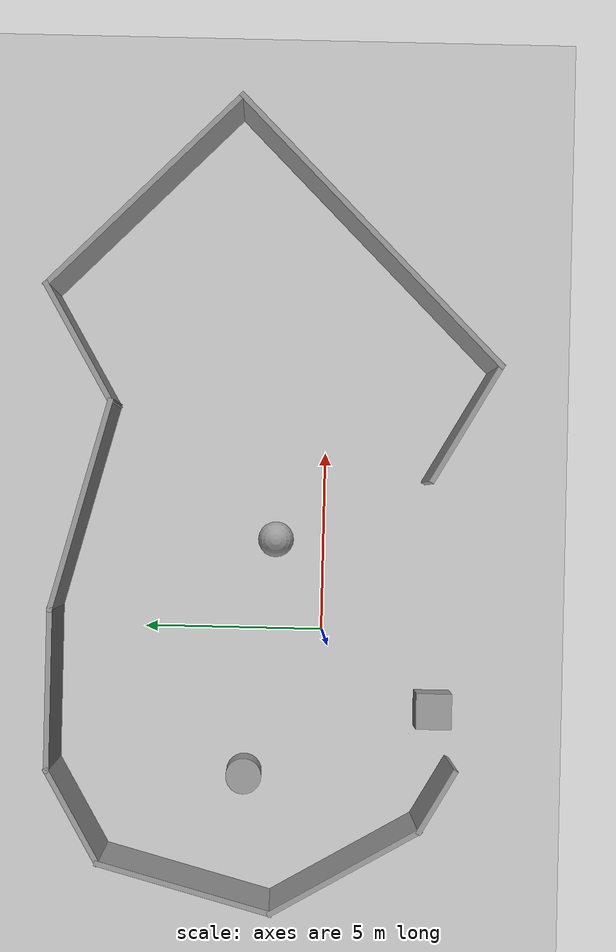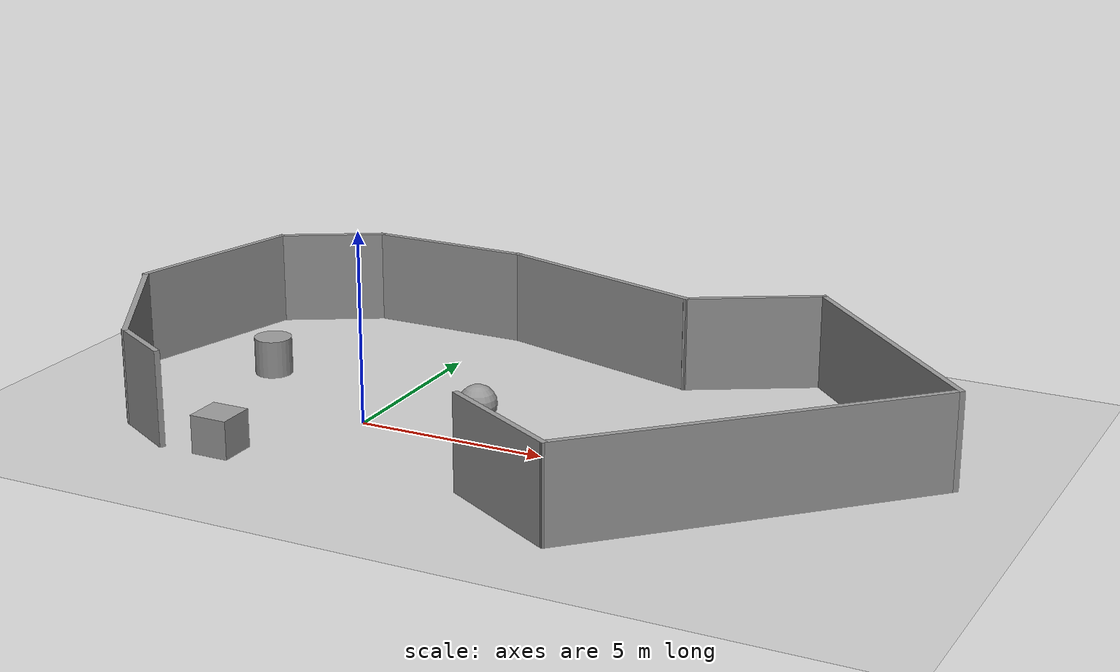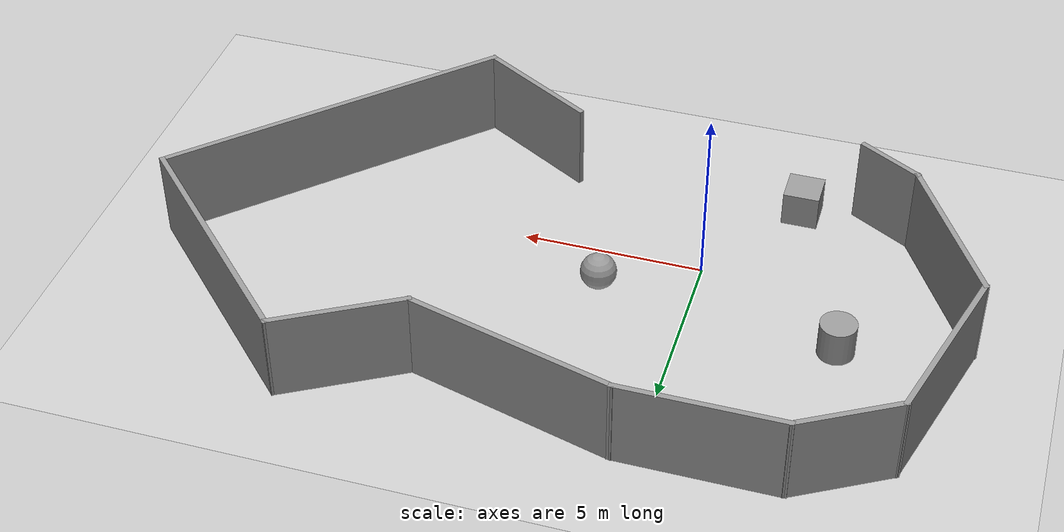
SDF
<sdf version="1.7">
 <world name="default">
  <light name="sun" type="directional">
   <pose>0 0 10 0 -0 0</pose>
   <diffuse>0.8 0.8 0.8 1</diffuse>
   <specular>0.2 0.2 0.2 1</specular>
   <attenuation>
    <range>1000</range>
    <constant>0.9</constant>
    <linear>0.01</linear>
    <quadratic>0.001</quadratic>
   </attenuation>
   <direction>-0.5 0.1 -0.9</direction>
   <spot><inner_angle>0</inner_angle><outer_angle>0</outer_angle><falloff>0</falloff></spot>
  </light>
  <model name="ground_plane">
   <static>1</static>
   <link name="link">
    <collision name="collision">
     <geometry><plane><normal>0 0 1</normal><size>100 100</size></plane></geometry>
     <surface>
      <contact><collide_bitmask>65535</collide_bitmask></contact>
      <friction><ode><mu>100</mu><mu2>50</mu2></ode></friction>
     </surface>
    </collision>
    <visual name="visual">
     <cast_shadows>0</cast_shadows>
     <geometry><plane><normal>0 0 1</normal><size>100 100</size></plane></geometry>
     <material>
      <script><uri>file://media/materials/scripts/gazebo.material</uri><name>Gazebo/Grey</name></script>
     </material>
    </visual>
   </link>
  </model>
  <gravity>0 0 -9.8</gravity>
  <magnetic_field>6e-06 2.3e-05 -4.2e-05</magnetic_field>
  <atmosphere type="adiabatic"/>
  <physics type="ode">
   <max_step_size>0.001</max_step_size>
   <real_time_factor>1</real_time_factor>
   <real_time_update_rate>1000</real_time_update_rate>
  </physics>
  <scene><ambient>0.4 0.4 0.4 1</ambient><background>0.7 0.7 0.7 1</background><shadows>1</shadows></scene>
  <spherical_coordinates>
   <surface_model>EARTH_WGS84</surface_model>
   <latitude_deg>0</latitude_deg>
   <longitude_deg>0</longitude_deg>
   <elevation>0</elevation>
   <heading_deg>0</heading_deg>
  </spherical_coordinates>
  <model name="unit_box">
   <pose>-2.15017 -3.1504 0.499995 -1e-05 -0 -0</pose>
   <link name="link">
    <inertial>
     <mass>1</mass>
     <inertia>
      <ixx>0.166667</ixx>
      <ixy>0</ixy>
      <ixz>0</ixz>
      <iyy>0.166667</iyy>
      <iyz>0</iyz>
      <izz>0.166667</izz>
     </inertia>
    </inertial>
    <collision name="collision"><geometry><box><size>1 1 1</size></box></geometry></collision>
    <visual name="visual">
     <geometry><box><size>1 1 1</size></box></geometry>
     <material>
      <script><name>Gazebo/Grey</name><uri>file://media/materials/scripts/gazebo.material</uri></script>
     </material>
    </visual>
   </link>
  </model>
  <model name="unit_cylinder">
   <pose>-4.06741 2.12119 0.499997 3e-06 4e-06 -0</pose>
   <link name="link">
    <inertial>
     <mass>1</mass>
     <inertia><ixx>0.145833</ixx><ixy>0</ixy><ixz>0</ixz><iyy>0.145833</iyy><iyz>0</iyz><izz>0.125</izz></inertia>
    </inertial>
    <collision name="collision">
     <geometry><cylinder><radius>0.5</radius><length>1</length></cylinder></geometry>
    </collision>
    <visual name="visual">
     <geometry><cylinder><radius>0.5</radius><length>1</length></cylinder></geometry>
     <material>
      <script><name>Gazebo/Grey</name><uri>file://media/materials/scripts/gazebo.material</uri></script>
     </material>
    </visual>
   </link>
  </model>
  <model name="unit_sphere">
   <pose>2.54874 1.35213 0.5 0 -0 0</pose>
   <link name="link">
    <inertial>
     <mass>1</mass>
     <inertia><ixx>0.1</ixx><ixy>0</ixy><ixz>0</ixz><iyy>0.1</iyy><iyz>0</iyz><izz>0.1</izz></inertia>
    </inertial>
    <collision name="collision"><geometry><sphere><radius>0.5</radius></sphere></geometry></collision>
    <visual name="visual">
     <geometry><sphere><radius>0.5</radius></sphere></geometry>
     <material>
      <script><name>Gazebo/Grey</name><uri>file://media/materials/scripts/gazebo.material</uri></script>
     </material>
    </visual>
   </link>
  </model>
  <model name="demo">
   <pose>3.51918 1.53486 0 0 -0 0</pose>
   <link name="Wall_10">
    <collision name="Wall_10_Collision">
     <geometry><box><size>10.25 0.15 2.5</size></box></geometry>
     <pose>0 0 1.25 0 -0 0</pose>
    </collision>
    <visual name="Wall_10_Visual">
     <pose>0 0 1.25 0 -0 0</pose>
     <geometry><box><size>10.25 0.15 2.5</size></box></geometry>
     <material>
      <script><uri>file://media/materials/scripts/gazebo.material</uri><name>Gazebo/Grey</name></script>
      <ambient>1 1 1 1</ambient>
     </material>
     <meta><layer>0</layer></meta>
    </visual>
    <pose>7.44682 -2.59862 0 0 -0 -2.35619</pose>
   </link>
   <link name="Wall_11">
    <collision name="Wall_11_Collision">
     <geometry><box><size>3.75 0.15 2.5</size></box></geometry>
     <pose>0 0 1.25 0 -0 0</pose>
    </collision>
    <visual name="Wall_11_Visual">
     <pose>0 0 1.25 0 -0 0</pose>
     <geometry><box><size>3.75 0.15 2.5</size></box></geometry>
     <material>
      <script><uri>file://media/materials/scripts/gazebo.material</uri><name>Gazebo/Grey</name></script>
      <ambient>1 1 1 1</ambient>
     </material>
     <meta><layer>0</layer></meta>
    </visual>
    <pose>2.31709 -5.26951 0 0 -0 2.61799</pose>
   </link>
   <link name="Wall_2">
    <collision name="Wall_2_Collision">
     <geometry><box><size>2 0.15 2.5</size></box></geometry>
     <pose>0 0 1.25 0 -0 0</pose>
    </collision>
    <visual name="Wall_2_Visual">
     <pose>0 0 1.25 0 -0 0</pose>
     <geometry><box><size>2 0.15 2.5</size></box></geometry>
     <material>
      <script><uri>file://media/materials/scripts/gazebo.material</uri><name>Gazebo/Grey</name></script>
      <ambient>1 1 1 1</ambient>
     </material>
     <meta><layer>0</layer></meta>
    </visual>
    <pose>-7.92025 -4.67236 0 0 -0 2.61799</pose>
   </link>
   <link name="Wall_3">
    <collision name="Wall_3_Collision">
     <geometry><box><size>4.75 0.15 2.5</size></box></geometry>
     <pose>0 0 1.25 0 -0 0</pose>
    </collision>
    <visual name="Wall_3_Visual">
     <pose>0 0 1.25 0 -0 0</pose>
     <geometry><box><size>4.75 0.15 2.5</size></box></geometry>
     <material>
      <script><uri>file://media/materials/scripts/gazebo.material</uri><name>Gazebo/Grey</name></script>
      <ambient>1 1 1 1</ambient>
     </material>
     <meta><layer>0</layer></meta>
    </visual>
    <pose>-9.87133 -2.218 0 0 -0 2.0944</pose>
   </link>
   <link name="Wall_4">
    <collision name="Wall_4_Collision">
     <geometry><box><size>5 0.15 2.5</size></box></geometry>
     <pose>0 0 1.25 0 -0 0</pose>
    </collision>
    <visual name="Wall_4_Visual">
     <pose>0 0 1.25 0 -0 0</pose>
     <geometry><box><size>5 0.15 2.5</size></box></geometry>
     <material>
      <script><uri>file://media/materials/scripts/gazebo.material</uri><name>Gazebo/Grey</name></script>
      <ambient>1 1 1 1</ambient>
     </material>
     <meta><layer>0</layer></meta>
    </visual>
    <pose>-10.3937 2.11623 0 0 -0 1.309</pose>
   </link>
   <link name="Wall_5">
    <collision name="Wall_5_Collision">
     <geometry><box><size>3 0.15 2.5</size></box></geometry>
     <pose>0 0 1.25 0 -0 0</pose>
    </collision>
    <visual name="Wall_5_Visual">
     <pose>0 0 1.25 0 -0 0</pose>
     <geometry><box><size>3 0.15 2.5</size></box></geometry>
     <material>
      <script><uri>file://media/materials/scripts/gazebo.material</uri><name>Gazebo/Grey</name></script>
      <ambient>1 1 1 1</ambient>
     </material>
     <meta><layer>0</layer></meta>
    </visual>
    <pose>-8.53197 5.1711 0 0 -0 0.523599</pose>
   </link>
   <link name="Wall_6">
    <collision name="Wall_6_Collision">
     <geometry><box><size>4.5 0.15 2.5</size></box></geometry>
     <pose>0 0 1.25 0 -0 0</pose>
    </collision>
    <visual name="Wall_6_Visual">
     <pose>0 0 1.25 0 -0 0</pose>
     <geometry><box><size>4.5 0.15 2.5</size></box></geometry>
     <material>
      <script><uri>file://media/materials/scripts/gazebo.material</uri><name>Gazebo/Grey</name></script>
      <ambient>1 1 1 1</ambient>
     </material>
     <meta><layer>0</layer></meta>
    </visual>
    <pose>-5.12288 5.8836 0 0 -0 0</pose>
   </link>
   <link name="Wall_7">
    <collision name="Wall_7_Collision">
     <geometry><box><size>6 0.15 2.5</size></box></geometry>
     <pose>0 0 1.25 0 -0 0</pose>
    </collision>
    <visual name="Wall_7_Visual">
     <pose>0 0 1.25 0 -0 0</pose>
     <geometry><box><size>6 0.15 2.5</size></box></geometry>
     <material>
      <script><uri>file://media/materials/scripts/gazebo.material</uri><name>Gazebo/Grey</name></script>
      <ambient>1 1 1 1</ambient>
     </material>
     <meta><layer>0</layer></meta>
    </visual>
    <pose>-0.122549 5.12655 0 0 -0 -0.261799</pose>
   </link>
   <link name="Wall_8">
    <collision name="Wall_8_Collision">
     <geometry><box><size>3.75 0.15 2.5</size></box></geometry>
     <pose>0 0 1.25 0 -0 0</pose>
    </collision>
    <visual name="Wall_8_Visual">
     <pose>0 0 1.25 0 -0 0</pose>
     <geometry><box><size>3.75 0.15 2.5</size></box></geometry>
     <material>
      <script><uri>file://media/materials/scripts/gazebo.material</uri><name>Gazebo/Grey</name></script>
      <ambient>1 1 1 1</ambient>
     </material>
     <meta><layer>0</layer></meta>
    </visual>
    <pose>4.26163 5.26951 0 0 -0 0.523599</pose>
   </link>
   <link name="Wall_9">
    <collision name="Wall_9_Collision">
     <geometry><box><size>7.5 0.15 2.5</size></box></geometry>
     <pose>0 0 1.25 0 -0 0</pose>
    </collision>
    <visual name="Wall_9_Visual">
     <pose>0 0 1.25 0 -0 0</pose>
     <geometry><box><size>7.5 0.15 2.5</size></box></geometry>
     <material>
      <script><uri>file://media/materials/scripts/gazebo.material</uri><name>Gazebo/Grey</name></script>
      <ambient>1 1 1 1</ambient>
     </material>
     <meta><layer>0</layer></meta>
    </visual>
    <pose>8.41909 3.57089 0 0 -0 -0.785398</pose>
   </link>
   <static>1</static>
  </model>
 </world>
</sdf>
